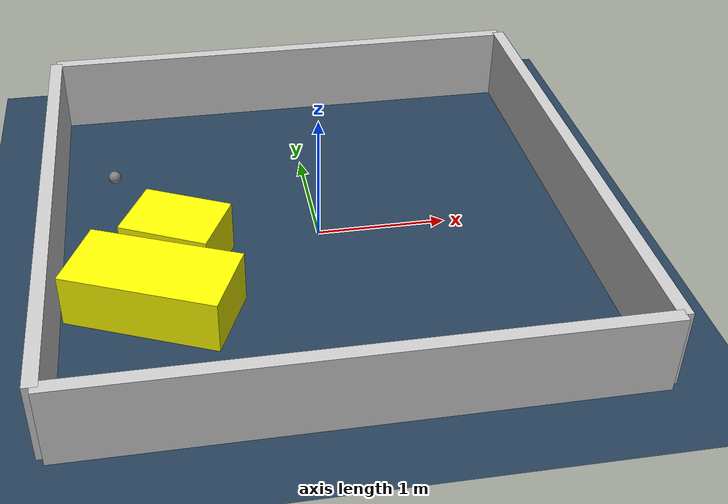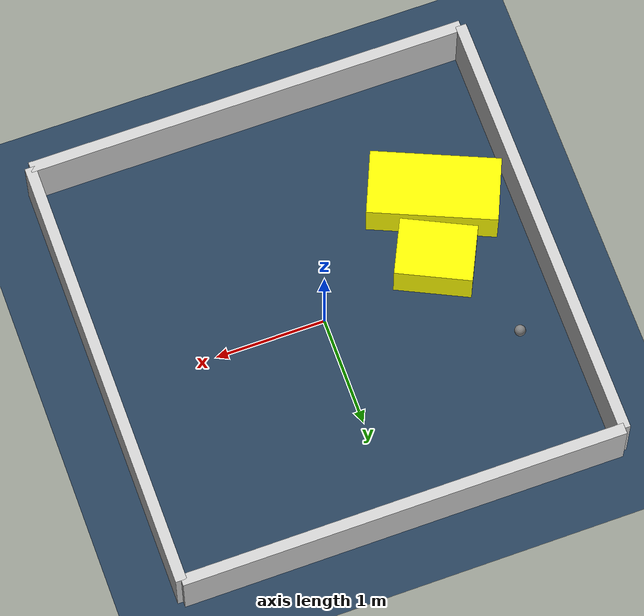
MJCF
<?xml version="1.0" ?>
<mujoco model="generated_environment">
  <option timestep="0.01" integrator="RK4" cone="elliptic"/>
  <default>
    <geom density="1"/>
  </default>
  <asset>
    <texture builtin="gradient" height="3072" rgb1="0.3 0.5 0.7" rgb2="0 0 0" type="skybox" width="512"/>
    <texture builtin="checker" height="300" mark="edge" markrgb="0.8 0.8 0.8" name="groundplane" rgb1="0.2 0.3 0.4" rgb2="0.1 0.2 0.3" type="2d" width="300"/>
    <material name="groundplane" reflectance="0.2" texrepeat="5 5" texture="groundplane" texuniform="true"/>
    <material name="robot" rgba="0.0 1.0 0.0 1"/>
  </asset>
  <worldbody>
    <light dir="0 0 -1" directional="true" pos="0 0 1.5"/>
    <geom condim="4" friction="1.0 0.005 0.001" material="groundplane" name="floor" size="0 0 0.05" type="plane"/>
    <body name="walls">
      <geom name="wall_1" condim="4" pos="-2.0 0.0 0.3" rgba="0.800000011920929 0.800000011920929 0.800000011920929 1.0" size="0.05 2.0 0.3" type="box"/>
      <geom name="wall_2" condim="4" pos="2.0 0.0 0.3" rgba="0.800000011920929 0.800000011920929 0.800000011920929 1.0" size="0.05 2.0 0.3" type="box"/>
      <geom name="wall_3" condim="4" pos="0.0 -2.0 0.3" rgba="0.800000011920929 0.800000011920929 0.800000011920929 1.0" size="2.0 0.05 0.3" type="box"/>
      <geom name="wall_4" condim="4" pos="0.0 2.0 0.3" rgba="0.800000011920929 0.800000011920929 0.800000011920929 1.0" size="2.0 0.05 0.3" type="box"/>
    </body>
    <body name="robot">
      <joint name="joint_x" type="slide" pos="0 0 0" axis="1 0 0"/>
      <joint name="joint_y" type="slide" pos="0 0 0" axis="0 1 0"/>
      <geom name="robot" type="sphere" pos="-1.5430133127410304 0.7297207800021641 0.2" size="0.05" mass="5." friction="1.0 0.005 0.0001" condim="4"/>
      <site name="sensor_ball"/>
    </body>
    <body name="obstacle_1_movable">
      <geom name="obstacle_1_movable" condim="4" pos="-1.282852940833455 -0.7269583611258457 0.2" euler="0 0 156.5355000008857" friction="1.0 0.005 0.001" rgba="1 1 0 1" size="0.5787722521539933 0.291878982007724 0.2" type="box" mass="0.1"/>
      <joint type="free"/>
    </body>
    <body name="obstacle_2_movable">
      <geom name="obstacle_2_movable" condim="4" pos="-1.0894698423128322 -0.1549587174882061 0.2" euler="0 0 154.14759460068822" friction="1.0 0.005 0.001" rgba="1 1 0 1" size="0.34350583522162464 0.2588328261553986 0.2" type="box" mass="0.1"/>
      <joint type="free"/>
    </body>
  </worldbody>
  <actuator>
    <motor name="actuator_x" joint="joint_x" gear="1" ctrlrange="-1 1"/>
    <motor name="actuator_y" joint="joint_y" gear="1" ctrlrange="-1 1"/>
  </actuator>
</mujoco>
